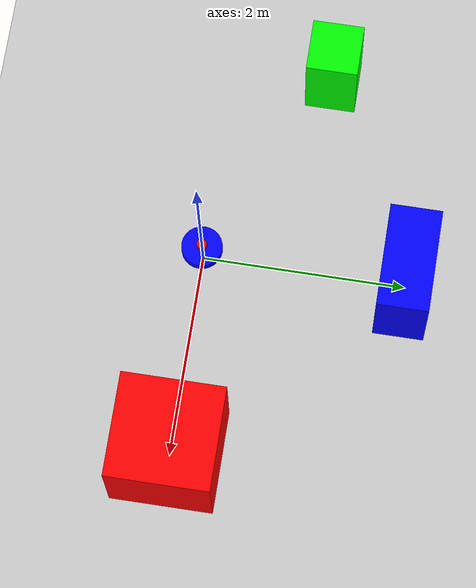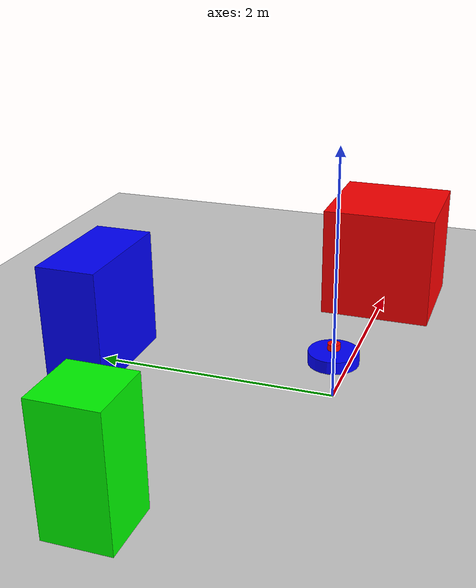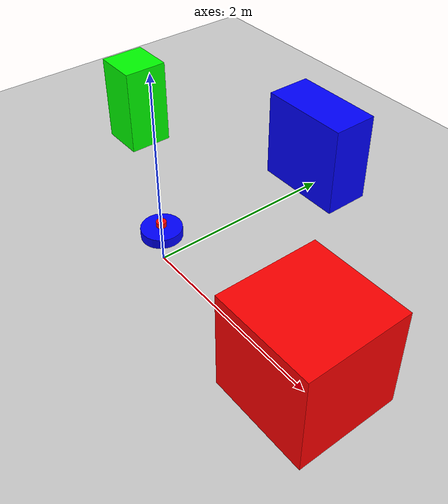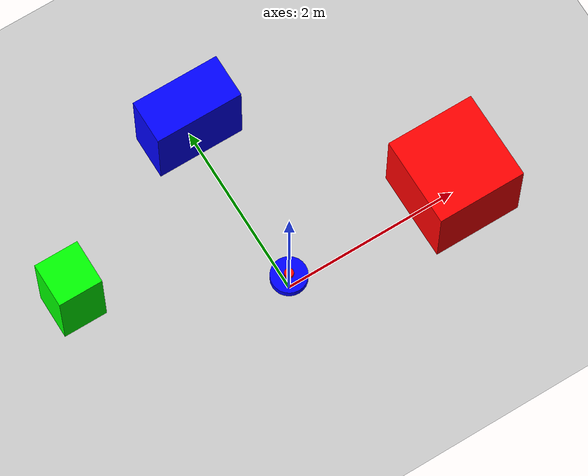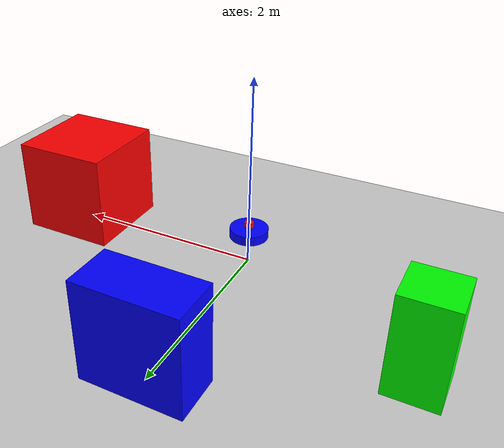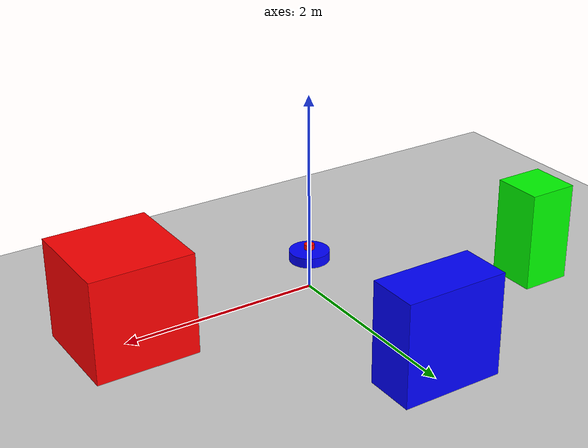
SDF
<?xml version="1.0" ?>
<sdf version="1.12">
  <world name="simple_world">
    <plugin
      filename="gz-sim-physics-system"
      name="gz::sim::systems::Physics">
      <max_step_size>0.001</max_step_size>
    </plugin>
    <plugin
      filename="gz-sim-sensors-system"
      name="gz::sim::systems::Sensors">
      <render_engine>ogre2</render_engine>
    </plugin>
    <plugin
      filename="gz-sim-scene-broadcaster-system"
      name="gz::sim::systems::SceneBroadcaster">
    </plugin>
    <plugin
      filename="gz-sim-user-commands-system"
      name="gz::sim::systems::UserCommands">
    </plugin>
    <light name="sun" type="directional">
      <cast_shadows>true</cast_shadows>
      <pose>0 0 10 0 0 0</pose>
      <diffuse>0.8 0.8 0.8 1</diffuse>
      <specular>0.2 0.2 0.2 1</specular>
      <attenuation>
        <range>1000</range>
        <constant>0.9</constant>
        <linear>0.01</linear>
        <quadratic>0.001</quadratic>
      </attenuation>
      <direction>-0.5 0.1 -0.9</direction>
    </light>

    <model name="ground_plane">
      <static>true</static>
      <link name="link">
        <collision name="collision">
          <geometry>
            <plane>
              <normal>0 0 1</normal>
              <size>100 100</size>
            </plane>
          </geometry>
          <surface>
            <friction>
              <ode>
                <mu>1.0</mu>
                <mu2>1.0</mu2>
              </ode>
            </friction>
          </surface>
        </collision>
        <visual name="visual">
          <geometry>
            <plane>
              <normal>0 0 1</normal>
              <size>100 100</size>
            </plane>
          </geometry>
          <material>
            <ambient>0.8 0.8 0.8 1</ambient>
            <diffuse>0.8 0.8 0.8 1</diffuse>
            <specular>0.8 0.8 0.8 1</specular>
          </material>
        </visual>
      </link>
    </model>

    <!-- Add some obstacles for LiDAR testing -->
    <model name="box1">
      <pose>2 0 0.5 0 0 0</pose>
      <static>true</static>
      <link name="link">
        <collision name="collision">
          <geometry>
            <box>
              <size>1 1 1</size>
            </box>
          </geometry>
        </collision>
        <visual name="visual">
          <geometry>
            <box>
              <size>1 1 1</size>
            </box>
          </geometry>
          <material>
            <ambient>1 0 0 1</ambient>
            <diffuse>1 0 0 1</diffuse>
          </material>
        </visual>
      </link>
    </model>

    <model name="box2">
      <pose>-2 1 0.5 0 0 0</pose>
      <static>true</static>
      <link name="link">
        <collision name="collision">
          <geometry>
            <box>
              <size>0.5 0.5 1</size>
            </box>
          </geometry>
        </collision>
        <visual name="visual">
          <geometry>
            <box>
              <size>0.5 0.5 1</size>
            </box>
          </geometry>
          <material>
            <ambient>0 1 0 1</ambient>
            <diffuse>0 1 0 1</diffuse>
          </material>
        </visual>
      </link>
    </model>

    <model name="box3">
      <pose>0 2 0.5 0 0 0</pose>
      <static>true</static>
      <link name="link">
        <collision name="collision">
          <geometry>
            <box>
              <size>1 0.5 1</size>
            </box>
          </geometry>
        </collision>
        <visual name="visual">
          <geometry>
            <box>
              <size>1 0.5 1</size>
            </box>
          </geometry>
          <material>
            <ambient>0 0 1 1</ambient>
            <diffuse>0 0 1 1</diffuse>
          </material>
        </visual>
      </link>
    </model>

    <model name="neos">
      <self_collide>true</self_collide>
      <pose>0 0 0.35 0 0 0</pose>
      <include merge="true">
        <uri>file:///home/mc/robot_ws/src/neos_gazebo/models/neos.sdf</uri>
      </include>

      <plugin
        filename="gz-sim-joint-state-publisher-system"
        name="gz::sim::systems::JointStatePublisher">
      </plugin>

      <plugin
        filename="gz-sim-pose-publisher-system"
        name="gz::sim::systems::PosePublisher">
        <publish_link_pose>true</publish_link_pose>
        <use_pose_vector_msg>true</use_pose_vector_msg>
        <static_publisher>true</static_publisher>
        <static_update_frequency>1</static_update_frequency>
      </plugin>

      <plugin
        filename="gz-sim-odometry-publisher-system"
        name="gz::sim::systems::OdometryPublisher">
        <odom_frame>odom</odom_frame>
        <robot_base_frame>base_link</robot_base_frame>
        <publish_tf>true</publish_tf>
        <publish_odom>true</publish_odom>
      </plugin>
    </model>

  </world>
</sdf>

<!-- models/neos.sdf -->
<sdf version="1.12">
  <model name="neos">
    <link name="base_link">
      <inertial>
        <pose>3.273063162220391e-19 0 3.7735849056559689e-07 0 0 0</pose>
        <mass>5.2999999999999989</mass>
        <inertia>
          <ixx>0.10151482001924531</ixx>
          <ixy>0</ixy>
          <ixz>6.546126324433135e-25</ixz>
          <iyy>0.1060148200192453</iyy>
          <iyz>0</iyz>
          <izz>0.1048</izz>
        </inertia>
      </inertial>
      <collision name="base_link_collision">
        <pose>0 0 0 0 0 0</pose>
        <geometry>
          <cylinder>
            <length>0.10000000000000001</length>
            <radius>0.20000000000000001</radius>
          </cylinder>
        </geometry>
      </collision>
      <collision name="base_link_fixed_joint_lump__front_caster_collision_1">
        <pose>0.14999999999999999 0 -0.044990000000000002 0 0 0</pose>
        <geometry>
          <sphere>
            <radius>0.029999999999999999</radius>
          </sphere>
        </geometry>
      </collision>
      <collision name="base_link_fixed_joint_lump__lidar_link_collision_2">
        <pose>0 0 0.089999999999999997 0 0 0</pose>
        <geometry>
          <cylinder>
            <length>0.050000000000000003</length>
            <radius>0.050000000000000003</radius>
          </cylinder>
        </geometry>
        <surface>
          <contact>
            <ode/>
          </contact>
          <friction>
            <ode/>
          </friction>
        </surface>
      </collision>
      <collision name="base_link_fixed_joint_lump__rear_caster_collision_3">
        <pose>-0.14999999999999999 0 -0.044990000000000002 0 0 0</pose>
        <geometry>
          <sphere>
            <radius>0.029999999999999999</radius>
          </sphere>
        </geometry>
      </collision>
      <visual name="base_link_visual">
        <pose>0 0 0 0 0 0</pose>
        <geometry>
          <cylinder>
            <length>0.10000000000000001</length>
            <radius>0.20000000000000001</radius>
          </cylinder>
        </geometry>
        <material>
          <diffuse>0 0 1 1</diffuse>
          <ambient>0 0 1 1</ambient>
        </material>
      </visual>
      <visual name="base_link_fixed_joint_lump__front_caster_visual_1">
        <pose>0.14999999999999999 0 -0.044990000000000002 0 0 0</pose>
        <geometry>
          <sphere>
            <radius>0.029999999999999999</radius>
          </sphere>
        </geometry>
        <material>
          <diffuse>0.625 0.625 0.625 1</diffuse>
          <ambient>0.625 0.625 0.625 1</ambient>
        </material>
      </visual>
      <visual name="base_link_fixed_joint_lump__lidar_link_visual_2">
        <pose>0 0 0.089999999999999997 0 0 0</pose>
        <geometry>
          <cylinder>
            <length>0.050000000000000003</length>
            <radius>0.050000000000000003</radius>
          </cylinder>
        </geometry>
        <material>
          <diffuse>1 0 0 1</diffuse>
          <ambient>1 0 0 1</ambient>
        </material>
      </visual>
      <visual name="base_link_fixed_joint_lump__rear_caster_visual_3">
        <pose>-0.14999999999999999 0 -0.044990000000000002 0 0 0</pose>
        <geometry>
          <sphere>
            <radius>0.029999999999999999</radius>
          </sphere>
        </geometry>
        <material>
          <diffuse>0.625 0.625 0.625 1</diffuse>
          <ambient>0.625 0.625 0.625 1</ambient>
        </material>
      </visual>
      <sensor name="lidar_sensor" type="gpu_lidar">
        <topic>/scan</topic>
        <update_rate>30</update_rate>
        <visualize>true</visualize>
        <ray>
          <scan>
            <horizontal>
              <samples>720</samples>
              <resolution>1</resolution>
              <min_angle>-1.5708</min_angle>
              <max_angle>1.5708</max_angle>
            </horizontal>
            <vertical>
              <samples>1</samples>
              <resolution>0.01</resolution>
              <min_angle>0</min_angle>
              <max_angle>0</max_angle>
            </vertical>
          </scan>
          <range>
            <min>0.10000000000000001</min>
            <max>7</max>
            <resolution>0.01</resolution>
          </range>
          <noise>
            <type>gaussian</type>
            <mean>0</mean>
            <stddev>0.01</stddev>
          </noise>
        </ray>
        <always_on>true</always_on>
        <pose>0 0 0.089999999999999997 0 0 0</pose>
      </sensor>
    </link>
    <joint name="left_wheel_joint" type="revolute">
      <pose relative_to="base_link">0 0.14999999999999999 -0.025000000000000001 1.5708 0 0</pose>
      <parent>base_link</parent>
      <child>left_wheel</child>
      <axis>
        <xyz>0 0 -1</xyz>
        <limit>
          <lower>-inf</lower>
          <upper>inf</upper>
        </limit>
        <dynamics>
          <spring_reference>0</spring_reference>
          <spring_stiffness>0</spring_stiffness>
        </dynamics>
      </axis>
    </joint>
    <link name="left_wheel">
      <pose relative_to="left_wheel_joint">0 0 0 0 0 0</pose>
      <inertial>
        <pose>0 0 0 0 0 0</pose>
        <mass>0.5</mass>
        <inertia>
          <ixx>0.001</ixx>
          <ixy>0</ixy>
          <ixz>0</ixz>
          <iyy>0.001</iyy>
          <iyz>0</iyz>
          <izz>0.001</izz>
        </inertia>
      </inertial>
      <collision name="left_wheel_collision">
        <pose>0 0 0 0 0 0</pose>
        <geometry>
          <cylinder>
            <length>0.02</length>
            <radius>0.050000000000000003</radius>
          </cylinder>
        </geometry>
      </collision>
      <visual name="left_wheel_visual">
        <pose>0 0 0 0 0 0</pose>
        <geometry>
          <cylinder>
            <length>0.02</length>
            <radius>0.050000000000000003</radius>
          </cylinder>
        </geometry>
        <material>
          <diffuse>0 0 0 1</diffuse>
          <ambient>0 0 0 1</ambient>
        </material>
      </visual>
    </link>
    <joint name="right_wheel_joint" type="revolute">
      <pose relative_to="base_link">0 -0.14999999999999999 -0.025000000000000001 1.5708 0 0</pose>
      <parent>base_link</parent>
      <child>right_wheel</child>
      <axis>
        <xyz>0 0 -1</xyz>
        <limit>
          <lower>-inf</lower>
          <upper>inf</upper>
        </limit>
        <dynamics>
          <spring_reference>0</spring_reference>
          <spring_stiffness>0</spring_stiffness>
        </dynamics>
      </axis>
    </joint>
    <link name="right_wheel">
      <pose relative_to="right_wheel_joint">0 0 0 0 0 0</pose>
      <inertial>
        <pose>0 0 0 0 0 0</pose>
        <mass>0.5</mass>
        <inertia>
          <ixx>0.001</ixx>
          <ixy>0</ixy>
          <ixz>0</ixz>
          <iyy>0.001</iyy>
          <iyz>0</iyz>
          <izz>0.001</izz>
        </inertia>
      </inertial>
      <collision name="right_wheel_collision">
        <pose>0 0 0 0 0 0</pose>
        <geometry>
          <cylinder>
            <length>0.02</length>
            <radius>0.050000000000000003</radius>
          </cylinder>
        </geometry>
      </collision>
      <visual name="right_wheel_visual">
        <pose>0 0 0 0 0 0</pose>
        <geometry>
          <cylinder>
            <length>0.02</length>
            <radius>0.050000000000000003</radius>
          </cylinder>
        </geometry>
        <material>
          <diffuse>0 0 0 1</diffuse>
          <ambient>0 0 0 1</ambient>
        </material>
      </visual>
    </link>
    <frame name="front_caster_joint" attached_to="base_link">
      <pose>0.14999999999999999 0 -0.044990000000000002 0 0 0</pose>
    </frame>
    <frame name="front_caster" attached_to="front_caster_joint">
      <pose>0 0 0 0 0 0</pose>
    </frame>
    <frame name="lidar_joint" attached_to="base_link">
      <pose>0 0 0.089999999999999997 0 0 0</pose>
    </frame>
    <frame name="lidar_link" attached_to="lidar_joint">
      <pose>0 0 0 0 0 0</pose>
    </frame>
    <frame name="rear_caster_joint" attached_to="base_link">
      <pose>-0.14999999999999999 0 -0.044990000000000002 0 0 0</pose>
    </frame>
    <frame name="rear_caster" attached_to="rear_caster_joint">
      <pose>0 0 0 0 0 0</pose>
    </frame>
    <plugin filename="gz-sim-diff-drive-system" name="gz::sim::systems::DiffDrive">
      <left_joint>left_wheel_joint</left_joint>
      <right_joint>right_wheel_joint</right_joint>
      <wheel_separation>0.3</wheel_separation>
      <wheel_radius>0.05</wheel_radius>
      <odom_publish_frequency>30</odom_publish_frequency>
      <odom_topic>odometry</odom_topic>
      <max_linear_acceleration>0.3</max_linear_acceleration>
      <min_linear_acceleration>-0.3</min_linear_acceleration>
      <max_angular_acceleration>2.0</max_angular_acceleration>
      <min_angular_acceleration>-2.0</min_angular_acceleration>
      <max_linear_velocity>1.0</max_linear_velocity>
      <min_linear_velocity>-1.0</min_linear_velocity>
      <max_angular_velocity>1.5</max_angular_velocity>
      <min_angular_velocity>-1.5</min_angular_velocity>
      <topic>cmd_vel</topic>
    </plugin>
  </model>
</sdf>
